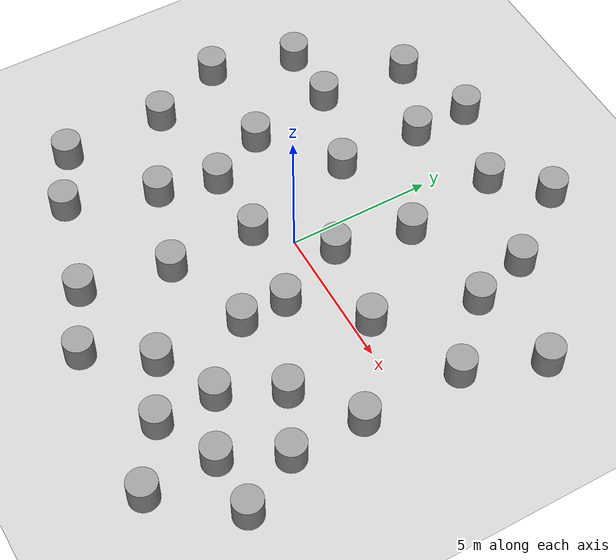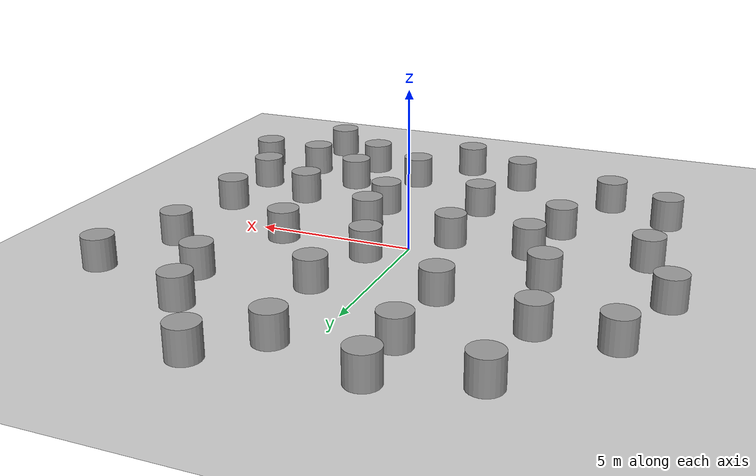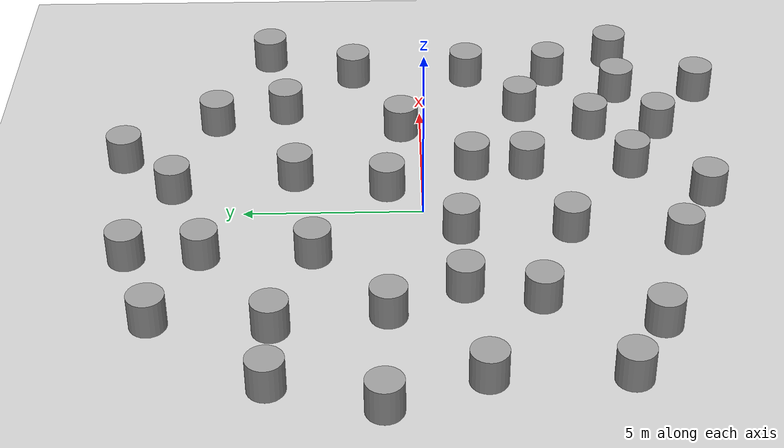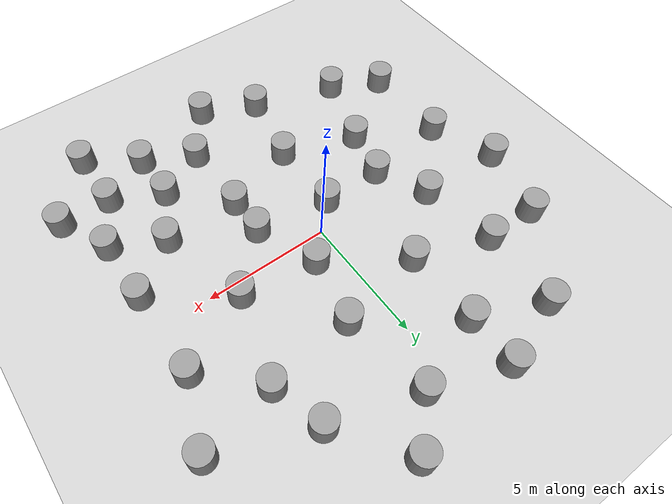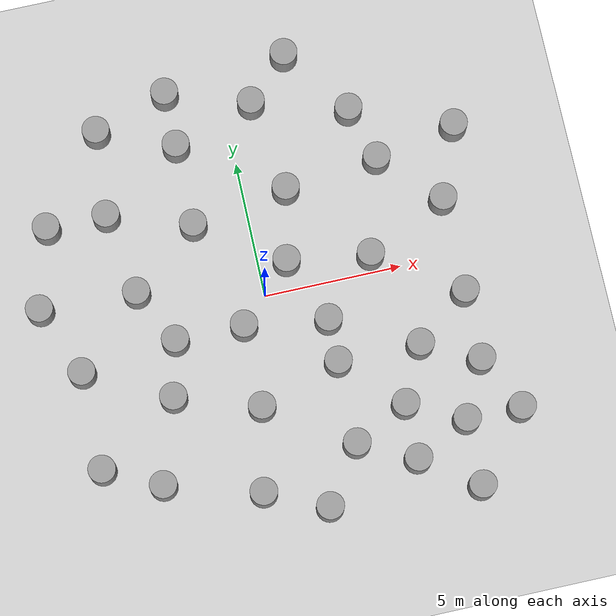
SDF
<sdf version="1.6">
 <world name="default">
  <light name="sun" type="directional">
   <pose>0 0 10 0 -0 0</pose>
   <diffuse>0.8 0.8 0.8 1</diffuse>
   <specular>0.2 0.2 0.2 1</specular>
   <attenuation>
    <range>1000</range>
    <constant>0.9</constant>
    <linear>0.01</linear>
    <quadratic>0.001</quadratic>
   </attenuation>
   <direction>-0.5 0.1 -0.9</direction>
  </light>
  <model name="ground_plane">
   <static>1</static>
   <link name="link">
    <collision name="collision">
     <geometry><plane><normal>0 0 1</normal><size>100 100</size></plane></geometry>
     <surface><friction><ode><mu>100</mu><mu2>50</mu2></ode></friction></surface>
    </collision>
    <visual name="visual">
     <cast_shadows>0</cast_shadows>
     <geometry><plane><normal>0 0 1</normal><size>100 100</size></plane></geometry>
     <material>
      <script><uri>file://media/materials/scripts/gazebo.material</uri><name>Gazebo/Grey</name></script>
     </material>
    </visual>
   </link>
  </model>
  <gravity>0 0 -9.8</gravity>
  <magnetic_field>6e-06 2.3e-05 -4.2e-05</magnetic_field>
  <atmosphere type="adiabatic"/>
  <physics name="default_physics" default="0" type="ode">
   <max_step_size>0.001</max_step_size>
   <real_time_factor>1</real_time_factor>
   <real_time_update_rate>1000</real_time_update_rate>
  </physics>
  <scene><ambient>0.4 0.4 0.4 1</ambient><background>0.7 0.7 0.7 1</background><shadows>1</shadows></scene>
  <spherical_coordinates>
   <surface_model>EARTH_WGS84</surface_model>
   <latitude_deg>0</latitude_deg>
   <longitude_deg>0</longitude_deg>
   <elevation>0</elevation>
   <heading_deg>0</heading_deg>
  </spherical_coordinates>
  <model name="unit_cylinder">
   <pose>-8.01599 1.1195 0.499993 -3e-06 2e-06 0</pose>
   <link name="link">
    <inertial>
     <mass>1</mass>
     <inertia><ixx>0.145833</ixx><ixy>0</ixy><ixz>0</ixz><iyy>0.145833</iyy><iyz>0</iyz><izz>0.125</izz></inertia>
    </inertial>
    <collision name="collision">
     <geometry><cylinder><radius>0.5</radius><length>1</length></cylinder></geometry>
    </collision>
    <visual name="visual">
     <geometry><cylinder><radius>0.5</radius><length>1</length></cylinder></geometry>
     <material>
      <script><name>Gazebo/Grey</name><uri>file://media/materials/scripts/gazebo.material</uri></script>
     </material>
    </visual>
   </link>
  </model>
  <model name="unit_cylinder_clone">
   <pose>-7.18871 4.00568 0.499998 3e-06 -2e-06 0</pose>
   <link name="link">
    <inertial>
     <mass>1</mass>
     <inertia><ixx>0.145833</ixx><ixy>0</ixy><ixz>0</ixz><iyy>0.145833</iyy><iyz>0</iyz><izz>0.125</izz></inertia>
    </inertial>
    <collision name="collision">
     <geometry><cylinder><radius>0.5</radius><length>1</length></cylinder></geometry>
    </collision>
    <visual name="visual">
     <geometry><cylinder><radius>0.5</radius><length>1</length></cylinder></geometry>
     <material>
      <script><name>Gazebo/Grey</name><uri>file://media/materials/scripts/gazebo.material</uri></script>
     </material>
    </visual>
   </link>
  </model>
  <model name="unit_cylinder_clone_0">
   <pose>-4.72153 7.12887 0.499993 -3e-06 2e-06 0</pose>
   <link name="link">
    <inertial>
     <mass>1</mass>
     <inertia><ixx>0.145833</ixx><ixy>0</ixy><ixz>0</ixz><iyy>0.145833</iyy><iyz>0</iyz><izz>0.125</izz></inertia>
    </inertial>
    <collision name="collision">
     <geometry><cylinder><radius>0.5</radius><length>1</length></cylinder></geometry>
    </collision>
    <visual name="visual">
     <geometry><cylinder><radius>0.5</radius><length>1</length></cylinder></geometry>
     <material>
      <script><name>Gazebo/Grey</name><uri>file://media/materials/scripts/gazebo.material</uri></script>
     </material>
    </visual>
   </link>
  </model>
  <model name="unit_cylinder_clone_1">
   <pose>-2 8 0.499993 -3e-06 2e-06 0</pose>
   <link name="link">
    <inertial>
     <mass>1</mass>
     <inertia><ixx>0.145833</ixx><ixy>0</ixy><ixz>0</ixz><iyy>0.145833</iyy><iyz>0</iyz><izz>0.125</izz></inertia>
    </inertial>
    <collision name="collision">
     <geometry><cylinder><radius>0.5</radius><length>1</length></cylinder></geometry>
    </collision>
    <visual name="visual">
     <geometry><cylinder><radius>0.5</radius><length>1</length></cylinder></geometry>
     <material>
      <script><name>Gazebo/Grey</name><uri>file://media/materials/scripts/gazebo.material</uri></script>
     </material>
    </visual>
   </link>
  </model>
  <model name="unit_cylinder_clone_2">
   <pose>1 7 0.499993 -3e-06 3e-06 0</pose>
   <link name="link">
    <inertial>
     <mass>1</mass>
     <inertia><ixx>0.145833</ixx><ixy>0</ixy><ixz>0</ixz><iyy>0.145833</iyy><iyz>0</iyz><izz>0.125</izz></inertia>
    </inertial>
    <collision name="collision">
     <geometry><cylinder><radius>0.5</radius><length>1</length></cylinder></geometry>
    </collision>
    <visual name="visual">
     <geometry><cylinder><radius>0.5</radius><length>1</length></cylinder></geometry>
     <material>
      <script><name>Gazebo/Grey</name><uri>file://media/materials/scripts/gazebo.material</uri></script>
     </material>
    </visual>
   </link>
  </model>
  <model name="unit_cylinder_clone_3">
   <pose>4.40634 6 0.499993 -3e-06 3e-06 0</pose>
   <link name="link">
    <inertial>
     <mass>1</mass>
     <inertia><ixx>0.145833</ixx><ixy>0</ixy><ixz>0</ixz><iyy>0.145833</iyy><iyz>0</iyz><izz>0.125</izz></inertia>
    </inertial>
    <collision name="collision">
     <geometry><cylinder><radius>0.5</radius><length>1</length></cylinder></geometry>
    </collision>
    <visual name="visual">
     <geometry><cylinder><radius>0.5</radius><length>1</length></cylinder></geometry>
     <material>
      <script><name>Gazebo/Grey</name><uri>file://media/materials/scripts/gazebo.material</uri></script>
     </material>
    </visual>
   </link>
  </model>
  <model name="unit_cylinder_clone_4">
   <pose>5 4 0.499993 -3e-06 3e-06 0</pose>
   <link name="link">
    <inertial>
     <mass>1</mass>
     <inertia><ixx>0.145833</ixx><ixy>0</ixy><ixz>0</ixz><iyy>0.145833</iyy><iyz>0</iyz><izz>0.125</izz></inertia>
    </inertial>
    <collision name="collision">
     <geometry><cylinder><radius>0.5</radius><length>1</length></cylinder></geometry>
    </collision>
    <visual name="visual">
     <geometry><cylinder><radius>0.5</radius><length>1</length></cylinder></geometry>
     <material>
      <script><name>Gazebo/Grey</name><uri>file://media/materials/scripts/gazebo.material</uri></script>
     </material>
    </visual>
   </link>
  </model>
  <model name="unit_cylinder_clone_5">
   <pose>0.999999 0.999999 0.499998 3e-06 -3e-06 0</pose>
   <link name="link">
    <inertial>
     <mass>1</mass>
     <inertia><ixx>0.145833</ixx><ixy>0</ixy><ixz>0</ixz><iyy>0.145833</iyy><iyz>0</iyz><izz>0.125</izz></inertia>
    </inertial>
    <collision name="collision">
     <geometry><cylinder><radius>0.5</radius><length>1</length></cylinder></geometry>
    </collision>
    <visual name="visual">
     <geometry><cylinder><radius>0.5</radius><length>1</length></cylinder></geometry>
     <material>
      <script><name>Gazebo/Grey</name><uri>file://media/materials/scripts/gazebo.material</uri></script>
     </material>
    </visual>
   </link>
  </model>
  <model name="unit_cylinder_clone_6">
   <pose>-2 3 0.499992 -3e-06 3e-06 0</pose>
   <link name="link">
    <inertial>
     <mass>1</mass>
     <inertia><ixx>0.145833</ixx><ixy>0</ixy><ixz>0</ixz><iyy>0.145833</iyy><iyz>0</iyz><izz>0.125</izz></inertia>
    </inertial>
    <collision name="collision">
     <geometry><cylinder><radius>0.5</radius><length>1</length></cylinder></geometry>
    </collision>
    <visual name="visual">
     <geometry><cylinder><radius>0.5</radius><length>1</length></cylinder></geometry>
     <material>
      <script><name>Gazebo/Grey</name><uri>file://media/materials/scripts/gazebo.material</uri></script>
     </material>
    </visual>
   </link>
  </model>
  <model name="unit_cylinder_clone_7">
   <pose>-5 4 0.499992 -3e-06 3e-06 0</pose>
   <link name="link">
    <inertial>
     <mass>1</mass>
     <inertia><ixx>0.145833</ixx><ixy>0</ixy><ixz>0</ixz><iyy>0.145833</iyy><iyz>0</iyz><izz>0.125</izz></inertia>
    </inertial>
    <collision name="collision">
     <geometry><cylinder><radius>0.5</radius><length>1</length></cylinder></geometry>
    </collision>
    <visual name="visual">
     <geometry><cylinder><radius>0.5</radius><length>1</length></cylinder></geometry>
     <material>
      <script><name>Gazebo/Grey</name><uri>file://media/materials/scripts/gazebo.material</uri></script>
     </material>
    </visual>
   </link>
  </model>
  <model name="unit_cylinder_clone_8">
   <pose>-2 6 0.499992 -3e-06 3e-06 0</pose>
   <link name="link">
    <inertial>
     <mass>1</mass>
     <inertia><ixx>0.145833</ixx><ixy>0</ixy><ixz>0</ixz><iyy>0.145833</iyy><iyz>0</iyz><izz>0.125</izz></inertia>
    </inertial>
    <collision name="collision">
     <geometry><cylinder><radius>0.5</radius><length>1</length></cylinder></geometry>
    </collision>
    <visual name="visual">
     <geometry><cylinder><radius>0.5</radius><length>1</length></cylinder></geometry>
     <material>
      <script><name>Gazebo/Grey</name><uri>file://media/materials/scripts/gazebo.material</uri></script>
     </material>
    </visual>
   </link>
  </model>
  <model name="unit_cylinder_clone_9">
   <pose>1.54348 3.59538 0.499992 -3e-06 3e-06 0</pose>
   <link name="link">
    <inertial>
     <mass>1</mass>
     <inertia><ixx>0.145833</ixx><ixy>0</ixy><ixz>0</ixz><iyy>0.145833</iyy><iyz>0</iyz><izz>0.125</izz></inertia>
    </inertial>
    <collision name="collision">
     <geometry><cylinder><radius>0.5</radius><length>1</length></cylinder></geometry>
    </collision>
    <visual name="visual">
     <geometry><cylinder><radius>0.5</radius><length>1</length></cylinder></geometry>
     <material>
      <script><name>Gazebo/Grey</name><uri>file://media/materials/scripts/gazebo.material</uri></script>
     </material>
    </visual>
   </link>
  </model>
  <model name="unit_cylinder_clone_10">
   <pose>4 0.571522 0.499992 -3e-06 3e-06 0</pose>
   <link name="link">
    <inertial>
     <mass>1</mass>
     <inertia><ixx>0.145833</ixx><ixy>0</ixy><ixz>0</ixz><iyy>0.145833</iyy><iyz>0</iyz><izz>0.125</izz></inertia>
    </inertial>
    <collision name="collision">
     <geometry><cylinder><radius>0.5</radius><length>1</length></cylinder></geometry>
    </collision>
    <visual name="visual">
     <geometry><cylinder><radius>0.5</radius><length>1</length></cylinder></geometry>
     <material>
      <script><name>Gazebo/Grey</name><uri>file://media/materials/scripts/gazebo.material</uri></script>
     </material>
    </visual>
   </link>
  </model>
  <model name="unit_cylinder_clone_11">
   <pose>7 2 0.499992 -3e-06 3e-06 0</pose>
   <link name="link">
    <inertial>
     <mass>1</mass>
     <inertia><ixx>0.145833</ixx><ixy>0</ixy><ixz>0</ixz><iyy>0.145833</iyy><iyz>0</iyz><izz>0.125</izz></inertia>
    </inertial>
    <collision name="collision">
     <geometry><cylinder><radius>0.5</radius><length>1</length></cylinder></geometry>
    </collision>
    <visual name="visual">
     <geometry><cylinder><radius>0.5</radius><length>1</length></cylinder></geometry>
     <material>
      <script><name>Gazebo/Grey</name><uri>file://media/materials/scripts/gazebo.material</uri></script>
     </material>
    </visual>
   </link>
  </model>
  <model name="unit_cylinder_clone_12">
   <pose>7 -1.47065 0.499998 3e-06 -3e-06 0</pose>
   <link name="link">
    <inertial>
     <mass>1</mass>
     <inertia><ixx>0.145833</ixx><ixy>0</ixy><ixz>0</ixz><iyy>0.145833</iyy><iyz>0</iyz><izz>0.125</izz></inertia>
    </inertial>
    <collision name="collision">
     <geometry><cylinder><radius>0.5</radius><length>1</length></cylinder></geometry>
    </collision>
    <visual name="visual">
     <geometry><cylinder><radius>0.5</radius><length>1</length></cylinder></geometry>
     <material>
      <script><name>Gazebo/Grey</name><uri>file://media/materials/scripts/gazebo.material</uri></script>
     </material>
    </visual>
   </link>
  </model>
  <model name="unit_cylinder_clone_13">
   <pose>2 -3 0.499998 3e-06 -3e-06 0</pose>
   <link name="link">
    <inertial>
     <mass>1</mass>
     <inertia><ixx>0.145833</ixx><ixy>0</ixy><ixz>0</ixz><iyy>0.145833</iyy><iyz>0</iyz><izz>0.125</izz></inertia>
    </inertial>
    <collision name="collision">
     <geometry><cylinder><radius>0.5</radius><length>1</length></cylinder></geometry>
    </collision>
    <visual name="visual">
     <geometry><cylinder><radius>0.5</radius><length>1</length></cylinder></geometry>
     <material>
      <script><name>Gazebo/Grey</name><uri>file://media/materials/scripts/gazebo.material</uri></script>
     </material>
    </visual>
   </link>
  </model>
  <model name="unit_cylinder_clone_14">
   <pose>2 -1.4248 0.499998 3e-06 -3e-06 0</pose>
   <link name="link">
    <inertial>
     <mass>1</mass>
     <inertia><ixx>0.145833</ixx><ixy>0</ixy><ixz>0</ixz><iyy>0.145833</iyy><iyz>0</iyz><izz>0.125</izz></inertia>
    </inertial>
    <collision name="collision">
     <geometry><cylinder><radius>0.5</radius><length>1</length></cylinder></geometry>
    </collision>
    <visual name="visual">
     <geometry><cylinder><radius>0.5</radius><length>1</length></cylinder></geometry>
     <material>
      <script><name>Gazebo/Grey</name><uri>file://media/materials/scripts/gazebo.material</uri></script>
     </material>
    </visual>
   </link>
  </model>
  <model name="unit_cylinder_clone_15">
   <pose>-4 -3 0.499992 -3e-06 3e-06 0</pose>
   <link name="link">
    <inertial>
     <mass>1</mass>
     <inertia><ixx>0.145833</ixx><ixy>0</ixy><ixz>0</ixz><iyy>0.145833</iyy><iyz>0</iyz><izz>0.125</izz></inertia>
    </inertial>
    <collision name="collision">
     <geometry><cylinder><radius>0.5</radius><length>1</length></cylinder></geometry>
    </collision>
    <visual name="visual">
     <geometry><cylinder><radius>0.5</radius><length>1</length></cylinder></geometry>
     <material>
      <script><name>Gazebo/Grey</name><uri>file://media/materials/scripts/gazebo.material</uri></script>
     </material>
    </visual>
   </link>
  </model>
  <model name="unit_cylinder_clone_16">
   <pose>-7 -1.43377 0.499992 -3e-06 3e-06 0</pose>
   <link name="link">
    <inertial>
     <mass>1</mass>
     <inertia><ixx>0.145833</ixx><ixy>0</ixy><ixz>0</ixz><iyy>0.145833</iyy><iyz>0</iyz><izz>0.125</izz></inertia>
    </inertial>
    <collision name="collision">
     <geometry><cylinder><radius>0.5</radius><length>1</length></cylinder></geometry>
    </collision>
    <visual name="visual">
     <geometry><cylinder><radius>0.5</radius><length>1</length></cylinder></geometry>
     <material>
      <script><name>Gazebo/Grey</name><uri>file://media/materials/scripts/gazebo.material</uri></script>
     </material>
    </visual>
   </link>
  </model>
  <model name="unit_cylinder_clone_17">
   <pose>-4.50596 0.999999 0.499998 3e-06 -4e-06 0</pose>
   <link name="link">
    <inertial>
     <mass>1</mass>
     <inertia><ixx>0.145833</ixx><ixy>0</ixy><ixz>0</ixz><iyy>0.145833</iyy><iyz>0</iyz><izz>0.125</izz></inertia>
    </inertial>
    <collision name="collision">
     <geometry><cylinder><radius>0.5</radius><length>1</length></cylinder></geometry>
    </collision>
    <visual name="visual">
     <geometry><cylinder><radius>0.5</radius><length>1</length></cylinder></geometry>
     <material>
      <script><name>Gazebo/Grey</name><uri>file://media/materials/scripts/gazebo.material</uri></script>
     </material>
    </visual>
   </link>
  </model>
  <model name="unit_cylinder_clone_18">
   <pose>-3.50884 -0.999999 0.499992 -3e-06 4e-06 0</pose>
   <link name="link">
    <inertial>
     <mass>1</mass>
     <inertia><ixx>0.145833</ixx><ixy>0</ixy><ixz>0</ixz><iyy>0.145833</iyy><iyz>0</iyz><izz>0.125</izz></inertia>
    </inertial>
    <collision name="collision">
     <geometry><cylinder><radius>0.5</radius><length>1</length></cylinder></geometry>
    </collision>
    <visual name="visual">
     <geometry><cylinder><radius>0.5</radius><length>1</length></cylinder></geometry>
     <material>
      <script><name>Gazebo/Grey</name><uri>file://media/materials/scripts/gazebo.material</uri></script>
     </material>
    </visual>
   </link>
  </model>
  <model name="unit_cylinder_clone_19">
   <pose>-0.999998 -0.999999 0.499992 -3e-06 4e-06 0</pose>
   <link name="link">
    <inertial>
     <mass>1</mass>
     <inertia><ixx>0.145833</ixx><ixy>0</ixy><ixz>0</ixz><iyy>0.145833</iyy><iyz>0</iyz><izz>0.125</izz></inertia>
    </inertial>
    <collision name="collision">
     <geometry><cylinder><radius>0.5</radius><length>1</length></cylinder></geometry>
    </collision>
    <visual name="visual">
     <geometry><cylinder><radius>0.5</radius><length>1</length></cylinder></geometry>
     <material>
      <script><name>Gazebo/Grey</name><uri>file://media/materials/scripts/gazebo.material</uri></script>
     </material>
    </visual>
   </link>
  </model>
  <model name="unit_cylinder_clone_20">
   <pose>-0.999998 -4 0.499992 -3e-06 4e-06 0</pose>
   <link name="link">
    <inertial>
     <mass>1</mass>
     <inertia><ixx>0.145833</ixx><ixy>0</ixy><ixz>0</ixz><iyy>0.145833</iyy><iyz>0</iyz><izz>0.125</izz></inertia>
    </inertial>
    <collision name="collision">
     <geometry><cylinder><radius>0.5</radius><length>1</length></cylinder></geometry>
    </collision>
    <visual name="visual">
     <geometry><cylinder><radius>0.5</radius><length>1</length></cylinder></geometry>
     <material>
      <script><name>Gazebo/Grey</name><uri>file://media/materials/scripts/gazebo.material</uri></script>
     </material>
    </visual>
   </link>
  </model>
  <model name="unit_cylinder_clone_21">
   <pose>-5 -6 0.499992 -3e-06 4e-06 0</pose>
   <link name="link">
    <inertial>
     <mass>1</mass>
     <inertia><ixx>0.145833</ixx><ixy>0</ixy><ixz>0</ixz><iyy>0.145833</iyy><iyz>0</iyz><izz>0.125</izz></inertia>
    </inertial>
    <collision name="collision">
     <geometry><cylinder><radius>0.5</radius><length>1</length></cylinder></geometry>
    </collision>
    <visual name="visual">
     <geometry><cylinder><radius>0.5</radius><length>1</length></cylinder></geometry>
     <material>
      <script><name>Gazebo/Grey</name><uri>file://media/materials/scripts/gazebo.material</uri></script>
     </material>
    </visual>
   </link>
  </model>
  <model name="unit_cylinder_clone_22">
   <pose>-7 -5 0.499992 -3e-06 4e-06 0</pose>
   <link name="link">
    <inertial>
     <mass>1</mass>
     <inertia><ixx>0.145833</ixx><ixy>0</ixy><ixz>0</ixz><iyy>0.145833</iyy><iyz>0</iyz><izz>0.125</izz></inertia>
    </inertial>
    <collision name="collision">
     <geometry><cylinder><radius>0.5</radius><length>1</length></cylinder></geometry>
    </collision>
    <visual name="visual">
     <geometry><cylinder><radius>0.5</radius><length>1</length></cylinder></geometry>
     <material>
      <script><name>Gazebo/Grey</name><uri>file://media/materials/scripts/gazebo.material</uri></script>
     </material>
    </visual>
   </link>
  </model>
  <model name="unit_cylinder_clone_23">
   <pose>-1.59645 -7 0.499992 -3e-06 4e-06 0</pose>
   <link name="link">
    <inertial>
     <mass>1</mass>
     <inertia><ixx>0.145833</ixx><ixy>0</ixy><ixz>0</ixz><iyy>0.145833</iyy><iyz>0</iyz><izz>0.125</izz></inertia>
    </inertial>
    <collision name="collision">
     <geometry><cylinder><radius>0.5</radius><length>1</length></cylinder></geometry>
    </collision>
    <visual name="visual">
     <geometry><cylinder><radius>0.5</radius><length>1</length></cylinder></geometry>
     <material>
      <script><name>Gazebo/Grey</name><uri>file://media/materials/scripts/gazebo.material</uri></script>
     </material>
    </visual>
   </link>
  </model>
  <model name="unit_cylinder_clone_24">
   <pose>2 -6 0.499992 -3e-06 4e-06 0</pose>
   <link name="link">
    <inertial>
     <mass>1</mass>
     <inertia><ixx>0.145833</ixx><ixy>0</ixy><ixz>0</ixz><iyy>0.145833</iyy><iyz>0</iyz><izz>0.125</izz></inertia>
    </inertial>
    <collision name="collision">
     <geometry><cylinder><radius>0.5</radius><length>1</length></cylinder></geometry>
    </collision>
    <visual name="visual">
     <geometry><cylinder><radius>0.5</radius><length>1</length></cylinder></geometry>
     <material>
      <script><name>Gazebo/Grey</name><uri>file://media/materials/scripts/gazebo.material</uri></script>
     </material>
    </visual>
   </link>
  </model>
  <model name="unit_cylinder_clone_25">
   <pose>0.582651 -8 0.499998 3e-06 4e-06 -0</pose>
   <link name="link">
    <inertial>
     <mass>1</mass>
     <inertia><ixx>0.145833</ixx><ixy>0</ixy><ixz>0</ixz><iyy>0.145833</iyy><iyz>0</iyz><izz>0.125</izz></inertia>
    </inertial>
    <collision name="collision">
     <geometry><cylinder><radius>0.5</radius><length>1</length></cylinder></geometry>
    </collision>
    <visual name="visual">
     <geometry><cylinder><radius>0.5</radius><length>1</length></cylinder></geometry>
     <material>
      <script><name>Gazebo/Grey</name><uri>file://media/materials/scripts/gazebo.material</uri></script>
     </material>
    </visual>
   </link>
  </model>
  <model name="unit_cylinder_clone_26">
   <pose>4 -7 0.499992 -3e-06 -4e-06 -0</pose>
   <link name="link">
    <inertial>
     <mass>1</mass>
     <inertia><ixx>0.145833</ixx><ixy>0</ixy><ixz>0</ixz><iyy>0.145833</iyy><iyz>0</iyz><izz>0.125</izz></inertia>
    </inertial>
    <collision name="collision">
     <geometry><cylinder><radius>0.5</radius><length>1</length></cylinder></geometry>
    </collision>
    <visual name="visual">
     <geometry><cylinder><radius>0.5</radius><length>1</length></cylinder></geometry>
     <material>
      <script><name>Gazebo/Grey</name><uri>file://media/materials/scripts/gazebo.material</uri></script>
     </material>
    </visual>
   </link>
  </model>
  <model name="unit_cylinder_clone_27">
   <pose>5 -3 0.499993 -3e-06 -3e-06 0</pose>
   <link name="link">
    <inertial>
     <mass>1</mass>
     <inertia><ixx>0.145833</ixx><ixy>0</ixy><ixz>0</ixz><iyy>0.145833</iyy><iyz>0</iyz><izz>0.125</izz></inertia>
    </inertial>
    <collision name="collision">
     <geometry><cylinder><radius>0.5</radius><length>1</length></cylinder></geometry>
    </collision>
    <visual name="visual">
     <geometry><cylinder><radius>0.5</radius><length>1</length></cylinder></geometry>
     <material>
      <script><name>Gazebo/Grey</name><uri>file://media/materials/scripts/gazebo.material</uri></script>
     </material>
    </visual>
   </link>
  </model>
  <model name="unit_cylinder_clone_28">
   <pose>4 -5 0.499993 -3e-06 -3e-06 0</pose>
   <link name="link">
    <inertial>
     <mass>1</mass>
     <inertia><ixx>0.145833</ixx><ixy>0</ixy><ixz>0</ixz><iyy>0.145833</iyy><iyz>0</iyz><izz>0.125</izz></inertia>
    </inertial>
    <collision name="collision">
     <geometry><cylinder><radius>0.5</radius><length>1</length></cylinder></geometry>
    </collision>
    <visual name="visual">
     <geometry><cylinder><radius>0.5</radius><length>1</length></cylinder></geometry>
     <material>
      <script><name>Gazebo/Grey</name><uri>file://media/materials/scripts/gazebo.material</uri></script>
     </material>
    </visual>
   </link>
  </model>
  <model name="unit_cylinder_clone_29">
   <pose>8 -6 0.499997 3e-06 4e-06 -0</pose>
   <link name="link">
    <inertial>
     <mass>1</mass>
     <inertia><ixx>0.145833</ixx><ixy>0</ixy><ixz>0</ixz><iyy>0.145833</iyy><iyz>0</iyz><izz>0.125</izz></inertia>
    </inertial>
    <collision name="collision">
     <geometry><cylinder><radius>0.5</radius><length>1</length></cylinder></geometry>
    </collision>
    <visual name="visual">
     <geometry><cylinder><radius>0.5</radius><length>1</length></cylinder></geometry>
     <material>
      <script><name>Gazebo/Grey</name><uri>file://media/materials/scripts/gazebo.material</uri></script>
     </material>
    </visual>
   </link>
  </model>
  <model name="unit_cylinder_clone_30">
   <pose>7 -4 0.499993 -3e-06 -4e-06 -0</pose>
   <link name="link">
    <inertial>
     <mass>1</mass>
     <inertia><ixx>0.145833</ixx><ixy>0</ixy><ixz>0</ixz><iyy>0.145833</iyy><iyz>0</iyz><izz>0.125</izz></inertia>
    </inertial>
    <collision name="collision">
     <geometry><cylinder><radius>0.5</radius><length>1</length></cylinder></geometry>
    </collision>
    <visual name="visual">
     <geometry><cylinder><radius>0.5</radius><length>1</length></cylinder></geometry>
     <material>
      <script><name>Gazebo/Grey</name><uri>file://media/materials/scripts/gazebo.material</uri></script>
     </material>
    </visual>
   </link>
  </model>
  <model name="unit_cylinder_clone_31">
   <pose>6 -6 0.499997 3e-06 4e-06 -0</pose>
   <link name="link">
    <inertial>
     <mass>1</mass>
     <inertia><ixx>0.145833</ixx><ixy>0</ixy><ixz>0</ixz><iyy>0.145833</iyy><iyz>0</iyz><izz>0.125</izz></inertia>
    </inertial>
    <collision name="collision">
     <geometry><cylinder><radius>0.5</radius><length>1</length></cylinder></geometry>
    </collision>
    <visual name="visual">
     <geometry><cylinder><radius>0.5</radius><length>1</length></cylinder></geometry>
     <material>
      <script><name>Gazebo/Grey</name><uri>file://media/materials/scripts/gazebo.material</uri></script>
     </material>
    </visual>
   </link>
  </model>
  <model name="unit_cylinder_clone_32">
   <pose>6 -8.41565 0.499997 3e-06 4e-06 -0</pose>
   <link name="link">
    <inertial>
     <mass>1</mass>
     <inertia><ixx>0.145833</ixx><ixy>0</ixy><ixz>0</ixz><iyy>0.145833</iyy><iyz>0</iyz><izz>0.125</izz></inertia>
    </inertial>
    <collision name="collision">
     <geometry><cylinder><radius>0.5</radius><length>1</length></cylinder></geometry>
    </collision>
    <visual name="visual">
     <geometry><cylinder><radius>0.5</radius><length>1</length></cylinder></geometry>
     <material>
      <script><name>Gazebo/Grey</name><uri>file://media/materials/scripts/gazebo.material</uri></script>
     </material>
    </visual>
   </link>
  </model>
  <model name="unit_cylinder_clone_33">
   <pose>8 4.59922 0.499993 -3e-06 -4e-06 -0</pose>
   <link name="link">
    <inertial>
     <mass>1</mass>
     <inertia><ixx>0.145833</ixx><ixy>0</ixy><ixz>0</ixz><iyy>0.145833</iyy><iyz>0</iyz><izz>0.125</izz></inertia>
    </inertial>
    <collision name="collision">
     <geometry><cylinder><radius>0.5</radius><length>1</length></cylinder></geometry>
    </collision>
    <visual name="visual">
     <geometry><cylinder><radius>0.5</radius><length>1</length></cylinder></geometry>
     <material>
      <script><name>Gazebo/Grey</name><uri>file://media/materials/scripts/gazebo.material</uri></script>
     </material>
    </visual>
   </link>
  </model>
  <model name="unit_cylinder_clone_34">
   <pose>2.5517 8.51934 0.499997 3e-06 4e-06 -0</pose>
   <link name="link">
    <inertial>
     <mass>1</mass>
     <inertia><ixx>0.145833</ixx><ixy>0</ixy><ixz>0</ixz><iyy>0.145833</iyy><iyz>0</iyz><izz>0.125</izz></inertia>
    </inertial>
    <collision name="collision">
     <geometry><cylinder><radius>0.5</radius><length>1</length></cylinder></geometry>
    </collision>
    <visual name="visual">
     <geometry><cylinder><radius>0.5</radius><length>1</length></cylinder></geometry>
     <material>
      <script><name>Gazebo/Grey</name><uri>file://media/materials/scripts/gazebo.material</uri></script>
     </material>
    </visual>
   </link>
  </model>
 </world>
</sdf>
